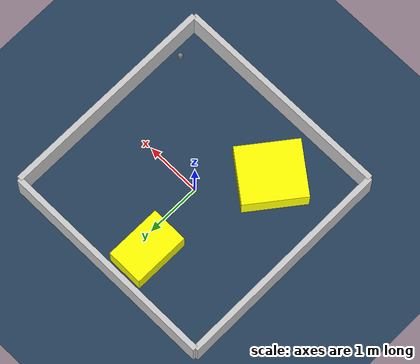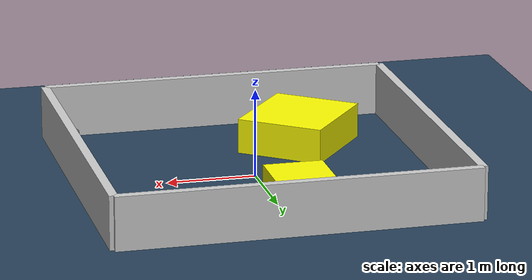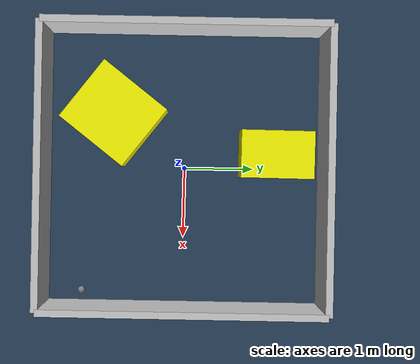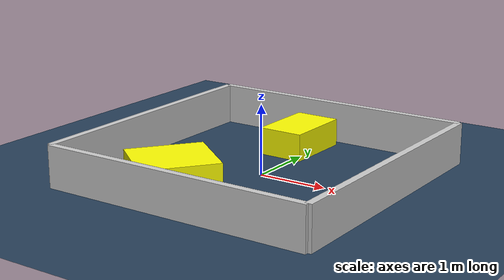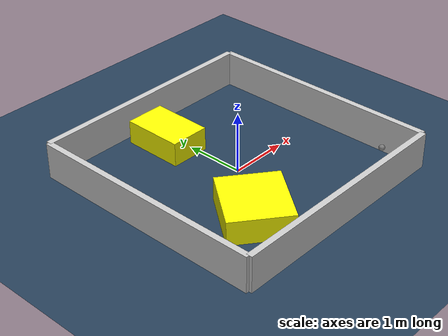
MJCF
<?xml version="1.0" ?>
<mujoco model="generated_environment">
  <option timestep="0.01" integrator="RK4" cone="elliptic"/>
  <default>
    <geom density="1"/>
  </default>
  <asset>
    <texture builtin="gradient" height="3072" rgb1="0.3 0.5 0.7" rgb2="0 0 0" type="skybox" width="512"/>
    <texture builtin="checker" height="300" mark="edge" markrgb="0.8 0.8 0.8" name="groundplane" rgb1="0.2 0.3 0.4" rgb2="0.1 0.2 0.3" type="2d" width="300"/>
    <material name="groundplane" reflectance="0.2" texrepeat="5 5" texture="groundplane" texuniform="true"/>
    <material name="robot" rgba="0.0 1.0 0.0 1"/>
  </asset>
  <worldbody>
    <light dir="0 0 -1" directional="true" pos="0 0 1.5"/>
    <geom condim="4" friction="1.0 0.005 0.001" material="groundplane" name="floor" size="0 0 0.05" type="plane"/>
    <body name="walls">
      <geom name="wall_1" condim="4" pos="-2.0 0.0 0.3" rgba="0.800000011920929 0.800000011920929 0.800000011920929 1.0" size="0.05 2.0 0.3" type="box"/>
      <geom name="wall_2" condim="4" pos="2.0 0.0 0.3" rgba="0.800000011920929 0.800000011920929 0.800000011920929 1.0" size="0.05 2.0 0.3" type="box"/>
      <geom name="wall_3" condim="4" pos="0.0 -2.0 0.3" rgba="0.800000011920929 0.800000011920929 0.800000011920929 1.0" size="2.0 0.05 0.3" type="box"/>
      <geom name="wall_4" condim="4" pos="0.0 2.0 0.3" rgba="0.800000011920929 0.800000011920929 0.800000011920929 1.0" size="2.0 0.05 0.3" type="box"/>
    </body>
    <body name="robot">
      <joint name="joint_x" type="slide" pos="0 0 0" axis="1 0 0"/>
      <joint name="joint_y" type="slide" pos="0 0 0" axis="0 1 0"/>
      <geom name="robot" type="sphere" pos="1.763955148243935 -1.4383945437466723 0.2" size="0.05" mass="5." friction="1.0 0.005 0.0001" condim="4"/>
      <site name="sensor_ball"/>
    </body>
    <body name="obstacle_1_movable">
      <geom name="obstacle_1_movable" condim="4" pos="-0.7565614165267015 -1.0042724326599561 0.2" euler="0 0 52.1749729226528" friction="1.0 0.005 0.001" rgba="1 1 0 1" size="0.5608470173533326 0.5062899298218935 0.2" type="box" mass="0.1"/>
      <joint type="free"/>
    </body>
    <body name="obstacle_2_movable">
      <geom name="obstacle_2_movable" condim="4" pos="-0.21706513771726055 1.3059508473700558 0.2" euler="0 0 359.5741342627387" friction="1.0 0.005 0.001" rgba="1 1 0 1" size="0.3348858766450581 0.5128750973194103 0.2" type="box" mass="0.1"/>
      <joint type="free"/>
    </body>
  </worldbody>
  <actuator>
    <motor name="actuator_x" joint="joint_x" gear="1" ctrlrange="-1 1"/>
    <motor name="actuator_y" joint="joint_y" gear="1" ctrlrange="-1 1"/>
  </actuator>
</mujoco>
